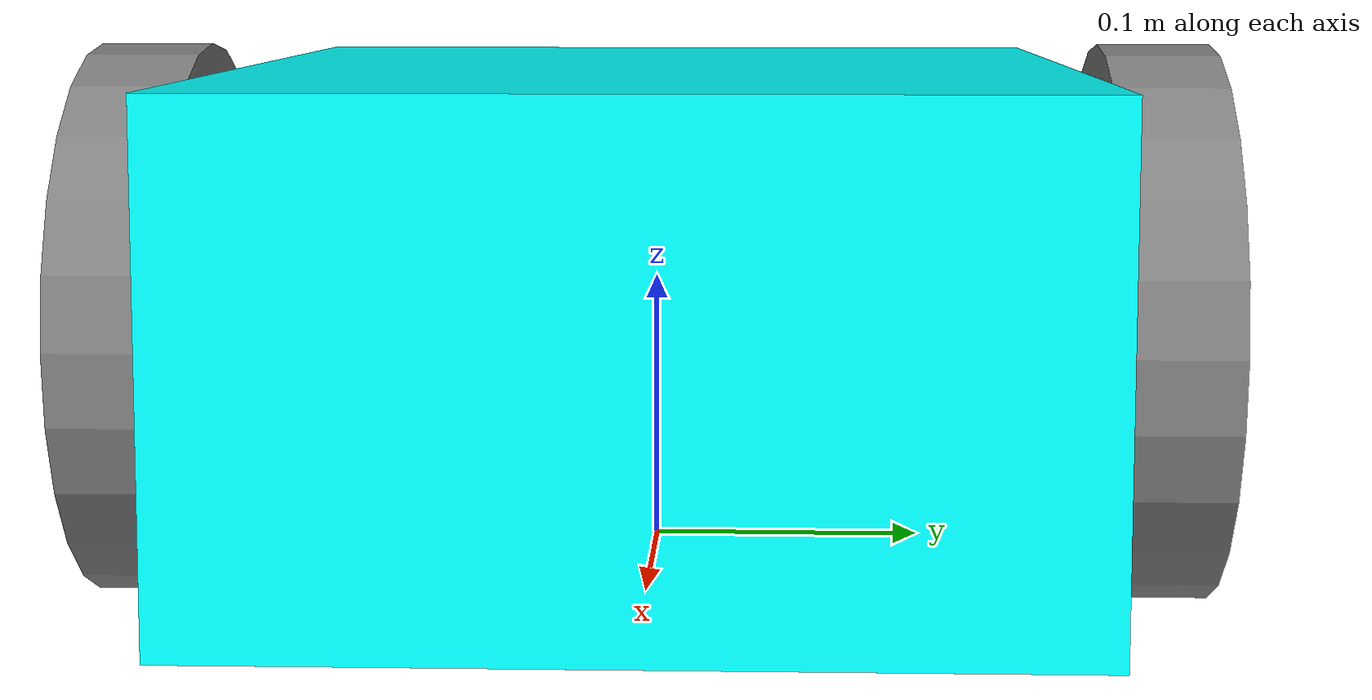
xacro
<?xml version="1.0"?>
<robot name="robot_core" xmlns:xacro="http://ros.org/wiki/xacro">

<xacro:property name="base_width" value = "0.31"/>
<xacro:property name="base_length" value = "0.42"/>
<xacro:property name="base_height" value = "0.18"/>

<xacro:property name="wheel_radius" value="0.10"/>
<xacro:property name="wheel_width" value="0.04"/>
<xacro:property name="wheel_ygap" value="0.025"/>
<xacro:property name="wheel_zoff" value="0.01"/>
<xacro:property name="wheel_xoff" value="0.05"/>

<xacro:property name="caster_xoff" value="0.1"/>

  <!-- Define intertial property macros  -->
  <xacro:macro name="box_inertia" params="m w h d">
    <inertial>
      <origin xyz="0 0 0" rpy="${pi/2} 0 ${pi/2}"/>
      <mass value="${m}"/>
      <inertia ixx="${(m/12) * (h*h + d*d)}" ixy="0.0" ixz="0.0" iyy="${(m/12) * (w*w + d*d)}" iyz="0.0" izz="${(m/12) * (w*w + h*h)}"/>
    </inertial>
  </xacro:macro>

  <xacro:macro name="cylinder_inertia" params="m r h">
    <inertial>
      <origin xyz="0 0 0" rpy="${pi/2} 0 0" />
      <mass value="${m}"/>
      <inertia ixx="${(m/12) * (3*r*r + h*h)}" ixy = "0" ixz = "0" iyy="${(m/12) * (3*r*r + h*h)}" iyz = "0" izz="${(m/2) * (r*r)}"/>
    </inertial>
  </xacro:macro>

  <xacro:macro name="sphere_inertia" params="m r">
    <inertial>
      <mass value="${m}"/>
      <inertia ixx="${(2/5) * m * (r*r)}" ixy="0.0" ixz="0.0" iyy="${(2/5) * m * (r*r)}" iyz="0.0" izz="${(2/5) * m * (r*r)}"/>
    </inertial>
  </xacro:macro>

  <!-- Robot Base link -->
  <!-- The base link is empty because it can't have inertia parameters
   to run correctly in Gazebo and also because is a ROS standard to
   always have a 'base_link' -->
  <link name="base_link">
  </link>

  <!-- Robot Chassis -->
  <link name="chassis">
    <visual>
    <origin xyz="0 0 ${base_height/2}" rpy="0 0 0"/>
      <geometry>
        <box size="${base_length} ${base_width} ${base_height}"/>
      </geometry>
      <material name="Cyan">
        <color rgba="0 1.0 1.0 1.0"/>
      </material>
    </visual>
    <collision>
    <origin xyz="0 0 ${base_height/2}" rpy="0 0 0"/>
      <geometry>
        <box size="${base_length} ${base_width} ${base_height}"/>
      </geometry>
    </collision>

    <xacro:box_inertia m="5" w="${base_width}" d="${base_length}" h="${base_height}"/>
  </link>

   <gazebo reference="chassis">
    <material>Gazebo/Orange</material>
  </gazebo>

  <joint name="chassis_joint" type="fixed">
    <parent link="base_link"/>
    <child link="chassis"/>
    <origin xyz="0 0 0" rpy="0 0 0"/>
  </joint>

    <!-- Caster Wheel -->
  <link name="caster">
    <visual>
      <geometry>
        <sphere radius="${wheel_zoff}"/>
      </geometry>
      <material name="white">
        <color rgba="1 1.0 1.0 1.0"/>
      </material>
    </visual>
    <collision>
      <origin xyz="0 0 0" rpy="0 0 0"/>
      <geometry>
        <sphere radius="${wheel_zoff}"/>
      </geometry>
    </collision>

    <xacro:sphere_inertia m="0.5" r="${(wheel_radius+wheel_zoff-(base_height/2))}"/>
  </link>

   <gazebo reference="caster">
    <material>Gazebo/Blue</material>
  </gazebo>

  <joint name="caster_joint" type="fixed">
    <parent link="base_link"/>
    <child link="caster"/>
    <origin xyz="${-caster_xoff} 0.0 0" rpy="0 0 0"/>
  </joint>

    <!-- Wheels -->
  <xacro:macro name="wheel" params="prefix x_reflect y_reflect">
    <link name="${prefix}_link">
      <visual>
        <origin xyz="0 0 0" rpy="${pi/2} 0 0"/>
        <geometry>
            <cylinder radius="${wheel_radius}" length="${wheel_width}"/>
        </geometry>
        <material name="Gray">
          <color rgba="0.5 0.5 0.5 1.0"/>
        </material>
      </visual>
      <collision>
        <origin xyz="0 0 0" rpy="${pi/2} 0 0"/>
        <geometry>
          <cylinder radius="${wheel_radius}" length="${wheel_width}"/>
        </geometry>
      </collision>

      <xacro:cylinder_inertia m="0.5" r="${wheel_radius}" h="${wheel_width}"/>
    </link>

    <joint name="${prefix}_joint" type="continuous">
      <parent link="base_link"/>
      <child link="${prefix}_link"/>
      <origin xyz="${-x_reflect*wheel_xoff} ${y_reflect*(base_width/2+wheel_ygap)} ${wheel_radius-wheel_zoff}" rpy="0 0 0"/>
      <axis xyz="0 1 0"/>
    </joint>
  </xacro:macro>

  <xacro:wheel prefix="drivewhl_l" x_reflect="-1" y_reflect="1" />
  <xacro:wheel prefix="drivewhl_r" x_reflect="-1" y_reflect="-1" />

  <!-- Gazebo plugins that provide robot control -->
  <gazebo>
    <plugin filename="gz-sim-diff-drive-system" name="gz::sim::systems::DiffDrive">

      <!-- joints -->
      <left_joint>drivewhl_l_joint</left_joint>
      <right_joint>drivewhl_r_joint</right_joint>

      <!-- geometry -->
      <wheel_separation>${2*(base_width/2+wheel_ygap)}</wheel_separation>
      <wheel_radius>${wheel_radius}</wheel_radius>

      <!-- frames -->
      <odom_frame>odom</odom_frame>
      <robot_base_frame>base_link</robot_base_frame>
      <topic>/cmd_vel</topic>

      <!-- limits -->
      <max_linear_acceleration>1.0</max_linear_acceleration>
      <max_angular_acceleration>1.0</max_angular_acceleration>
    </plugin>
    <plugin filename="gz-sim-odometry-publisher-system" name="gz::sim::systems::OdometryPublisher">
        <odom_frame>odom</odom_frame>
        <robot_base_frame>base_link</robot_base_frame>
        <odom_publish_frequency>50</odom_publish_frequency>
        <odom_topic>/odom</odom_topic>
        <tf_topic>/tf</tf_topic>
        <dimensions>2</dimensions>
    </plugin>
    <plugin filename="gz-sim-joint-state-publisher-system" name="gz::sim::systems::JointStatePublisher">
      <topic>joint_states</topic>
      <joint_name>drivewhl_r_joint</joint_name>
      <joint_name>drivewhl_l_joint</joint_name>
    </plugin>
  </gazebo>
</robot>
